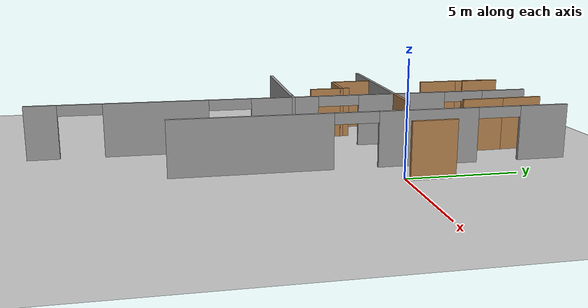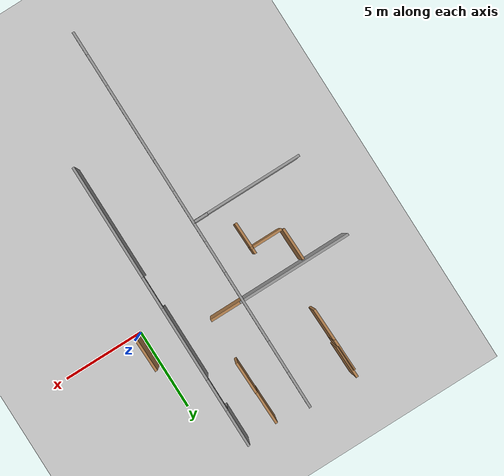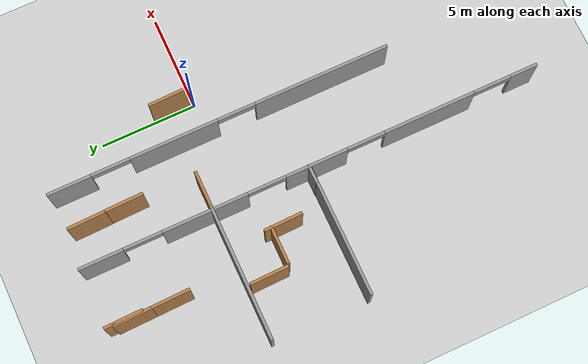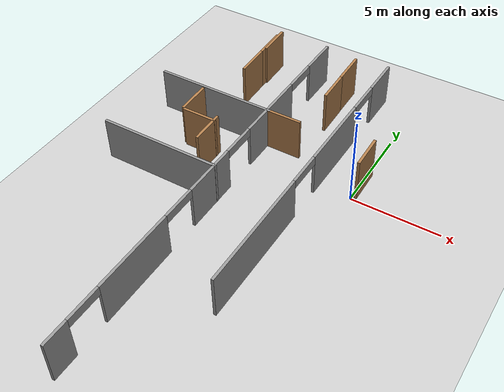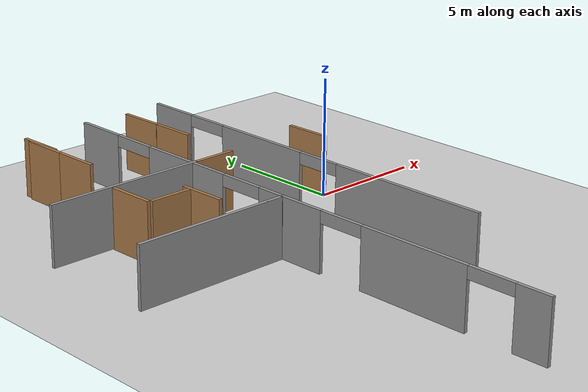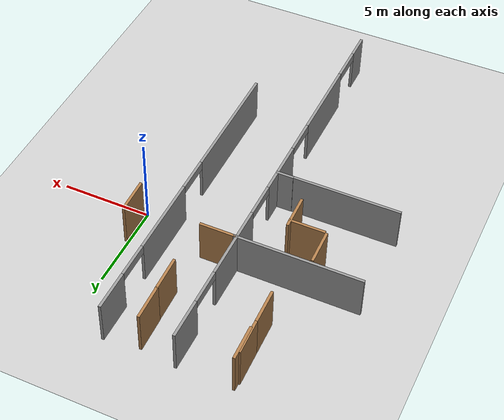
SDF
<sdf version="1.6">
 <world name="default">
  <model name="ground_plane">
   <static>1</static>
   <link name="link">
    <collision name="collision">
     <geometry><plane><normal>0 0 1</normal><size>100 100</size></plane></geometry>
     <surface><friction><ode><mu>100</mu><mu2>50</mu2></ode></friction></surface>
    </collision>
    <visual name="visual">
     <cast_shadows>0</cast_shadows>
     <geometry><plane><normal>0 0 1</normal><size>100 100</size></plane></geometry>
     <material>
      <script><uri>file://media/materials/scripts/gazebo.material</uri><name>Gazebo/Grey</name></script>
     </material>
    </visual>
   </link>
  </model>
  <model name="rbcp_final4">
   <link name="Wall_50">
    <pose>-10.8073 -0.125 2.5 0 0 -1.5708</pose>
    <visual name="Wall_50_Visual_0">
     <pose>-10.9762 0 1.25 0 -0 0</pose>
     <geometry><box><size>2.29763 0.15 2.5</size></box></geometry>
     <material>
      <script><uri>file://media/materials/scripts/gazebo.material</uri><name>Gazebo/Grey</name></script>
      <ambient>1 1 1 1</ambient>
      <diffuse>0.7 0.7 0.7 1</diffuse>
      <specular>0.01 0.01 0.01 1</specular>
      <emissive>0 0 0 1</emissive>
     </material>
    </visual>
    <visual name="Wall_50_Visual_1">
     <pose>-5.61109 0 1.25 0 -0 0</pose>
     <geometry><box><size>4.43257 0.15 2.5</size></box></geometry>
     <material>
      <script><uri>file://media/materials/scripts/gazebo.material</uri><name>Gazebo/Grey</name></script>
      <ambient>1 1 1 1</ambient>
      <diffuse>0.7 0.7 0.7 1</diffuse>
      <specular>0.01 0.01 0.01 1</specular>
      <emissive>0 0 0 1</emissive>
     </material>
    </visual>
    <visual name="Wall_50_Visual_2">
     <pose>0.229304 0 1.25 0 -0 0</pose>
     <geometry><box><size>3.24822 0.15 2.5</size></box></geometry>
     <material>
      <script><uri>file://media/materials/scripts/gazebo.material</uri><name>Gazebo/Grey</name></script>
      <ambient>1 1 1 1</ambient>
      <diffuse>0.7 0.7 0.7 1</diffuse>
      <specular>0.01 0.01 0.01 1</specular>
      <emissive>0 0 0 1</emissive>
     </material>
    </visual>
    <visual name="Wall_50_Visual_4">
     <pose>11.3986 0 1.25 0 -0 0</pose>
     <geometry><box><size>1.45284 0.15 2.5</size></box></geometry>
     <material>
      <script><uri>file://media/materials/scripts/gazebo.material</uri><name>Gazebo/Grey</name></script>
      <ambient>1 1 1 1</ambient>
      <diffuse>0.7 0.7 0.7 1</diffuse>
      <specular>0.01 0.01 0.01 1</specular>
      <emissive>0 0 0 1</emissive>
     </material>
    </visual>
    <visual name="Wall_50_Visual_3">
     <pose>6.26279 0 1.25 0 -0 0</pose>
     <geometry><box><size>4.81874 0.15 2.5</size></box></geometry>
     <material>
      <script><uri>file://media/materials/scripts/gazebo.material</uri><name>Gazebo/Grey</name></script>
      <ambient>1 1 1 1</ambient>
      <diffuse>0.7 0.7 0.7 1</diffuse>
      <specular>0.01 0.01 0.01 1</specular>
      <emissive>0 0 0 1</emissive>
     </material>
    </visual>
    <visual name="Wall_50_Visual_5">
     <pose>-8.82737 0 2.25 0 -0 0</pose>
     <geometry><box><size>2 0.15 0.5</size></box></geometry>
     <material>
      <script><uri>file://media/materials/scripts/gazebo.material</uri><name>Gazebo/Grey</name></script>
      <ambient>1 1 1 1</ambient>
      <diffuse>0.7 0.7 0.7 1</diffuse>
      <specular>0.01 0.01 0.01 1</specular>
      <emissive>0 0 0 1</emissive>
     </material>
    </visual>
    <visual name="Wall_50_Visual_6">
     <pose>-2.39481 0 2.25 0 -0 0</pose>
     <geometry><box><size>2 0.15 0.5</size></box></geometry>
     <material>
      <script><uri>file://media/materials/scripts/gazebo.material</uri><name>Gazebo/Grey</name></script>
      <ambient>1 1 1 1</ambient>
      <diffuse>0.7 0.7 0.7 1</diffuse>
      <specular>0.01 0.01 0.01 1</specular>
      <emissive>0 0 0 1</emissive>
     </material>
    </visual>
    <visual name="Wall_50_Visual_7">
     <pose>2.85341 0 2.25 0 -0 0</pose>
     <geometry><box><size>2 0.15 0.5</size></box></geometry>
     <material>
      <script><uri>file://media/materials/scripts/gazebo.material</uri><name>Gazebo/Grey</name></script>
      <ambient>1 1 1 1</ambient>
      <diffuse>0.7 0.7 0.7 1</diffuse>
      <specular>0.01 0.01 0.01 1</specular>
      <emissive>0 0 0 1</emissive>
     </material>
    </visual>
    <visual name="Wall_50_Visual_8">
     <pose>9.67216 0 2.25 0 -0 0</pose>
     <geometry><box><size>2 0.15 0.5</size></box></geometry>
     <material>
      <script><uri>file://media/materials/scripts/gazebo.material</uri><name>Gazebo/Grey</name></script>
      <ambient>1 1 1 1</ambient>
      <diffuse>0.7 0.7 0.7 1</diffuse>
      <specular>0.01 0.01 0.01 1</specular>
      <emissive>0 0 0 1</emissive>
     </material>
    </visual>
    <collision name="Wall_50_Collision_0">
     <pose>-10.9762 0 1.25 0 -0 0</pose>
     <geometry><box><size>2.29763 0.15 2.5</size></box></geometry>
     <surface>
      <friction>
       <ode><mu>1</mu><mu2>1</mu2><fdir1>0 0 0</fdir1><slip1>0</slip1><slip2>0</slip2></ode>
       <torsional>
        <coefficient>1</coefficient>
        <patch_radius>0</patch_radius>
        <surface_radius>0</surface_radius>
        <use_patch_radius>1</use_patch_radius>
        <ode><slip>0</slip></ode>
       </torsional>
      </friction>
      <bounce><restitution_coefficient>0</restitution_coefficient><threshold>1e+06</threshold></bounce>
      <contact>
       <collide_without_contact>0</collide_without_contact>
       <collide_without_contact_bitmask>1</collide_without_contact_bitmask>
       <collide_bitmask>1</collide_bitmask>
       <ode>
        <soft_cfm>0</soft_cfm>
        <soft_erp>0.2</soft_erp>
        <kp>1e+13</kp>
        <kd>1</kd>
        <max_vel>0.01</max_vel>
        <min_depth>0</min_depth>
       </ode>
       <bullet>
        <split_impulse>1</split_impulse>
        <split_impulse_penetration_threshold>-0.01</split_impulse_penetration_threshold>
        <soft_cfm>0</soft_cfm>
        <soft_erp>0.2</soft_erp>
        <kp>1e+13</kp>
        <kd>1</kd>
       </bullet>
      </contact>
     </surface>
    </collision>
    <collision name="Wall_50_Collision_1">
     <pose>-5.61109 0 1.25 0 -0 0</pose>
     <geometry><box><size>4.43257 0.15 2.5</size></box></geometry>
     <surface>
      <friction>
       <ode><mu>1</mu><mu2>1</mu2><fdir1>0 0 0</fdir1><slip1>0</slip1><slip2>0</slip2></ode>
       <torsional>
        <coefficient>1</coefficient>
        <patch_radius>0</patch_radius>
        <surface_radius>0</surface_radius>
        <use_patch_radius>1</use_patch_radius>
        <ode><slip>0</slip></ode>
       </torsional>
      </friction>
      <bounce><restitution_coefficient>0</restitution_coefficient><threshold>1e+06</threshold></bounce>
      <contact>
       <collide_without_contact>0</collide_without_contact>
       <collide_without_contact_bitmask>1</collide_without_contact_bitmask>
       <collide_bitmask>1</collide_bitmask>
       <ode>
        <soft_cfm>0</soft_cfm>
        <soft_erp>0.2</soft_erp>
        <kp>1e+13</kp>
        <kd>1</kd>
        <max_vel>0.01</max_vel>
        <min_depth>0</min_depth>
       </ode>
       <bullet>
        <split_impulse>1</split_impulse>
        <split_impulse_penetration_threshold>-0.01</split_impulse_penetration_threshold>
        <soft_cfm>0</soft_cfm>
        <soft_erp>0.2</soft_erp>
        <kp>1e+13</kp>
        <kd>1</kd>
       </bullet>
      </contact>
     </surface>
    </collision>
    <collision name="Wall_50_Collision_2">
     <pose>0.229304 0 1.25 0 -0 0</pose>
     <geometry><box><size>3.24822 0.15 2.5</size></box></geometry>
     <surface>
      <friction>
       <ode><mu>1</mu><mu2>1</mu2><fdir1>0 0 0</fdir1><slip1>0</slip1><slip2>0</slip2></ode>
       <torsional>
        <coefficient>1</coefficient>
        <patch_radius>0</patch_radius>
        <surface_radius>0</surface_radius>
        <use_patch_radius>1</use_patch_radius>
        <ode><slip>0</slip></ode>
       </torsional>
      </friction>
      <bounce><restitution_coefficient>0</restitution_coefficient><threshold>1e+06</threshold></bounce>
      <contact>
       <collide_without_contact>0</collide_without_contact>
       <collide_without_contact_bitmask>1</collide_without_contact_bitmask>
       <collide_bitmask>1</collide_bitmask>
       <ode>
        <soft_cfm>0</soft_cfm>
        <soft_erp>0.2</soft_erp>
        <kp>1e+13</kp>
        <kd>1</kd>
        <max_vel>0.01</max_vel>
        <min_depth>0</min_depth>
       </ode>
       <bullet>
        <split_impulse>1</split_impulse>
        <split_impulse_penetration_threshold>-0.01</split_impulse_penetration_threshold>
        <soft_cfm>0</soft_cfm>
        <soft_erp>0.2</soft_erp>
        <kp>1e+13</kp>
        <kd>1</kd>
       </bullet>
      </contact>
     </surface>
    </collision>
    <collision name="Wall_50_Collision_3">
     <pose>6.26279 0 1.25 0 -0 0</pose>
     <geometry><box><size>4.81874 0.15 2.5</size></box></geometry>
     <surface>
      <friction>
       <ode><mu>1</mu><mu2>1</mu2><fdir1>0 0 0</fdir1><slip1>0</slip1><slip2>0</slip2></ode>
       <torsional>
        <coefficient>1</coefficient>
        <patch_radius>0</patch_radius>
        <surface_radius>0</surface_radius>
        <use_patch_radius>1</use_patch_radius>
        <ode><slip>0</slip></ode>
       </torsional>
      </friction>
      <bounce><restitution_coefficient>0</restitution_coefficient><threshold>1e+06</threshold></bounce>
      <contact>
       <collide_without_contact>0</collide_without_contact>
       <collide_without_contact_bitmask>1</collide_without_contact_bitmask>
       <collide_bitmask>1</collide_bitmask>
       <ode>
        <soft_cfm>0</soft_cfm>
        <soft_erp>0.2</soft_erp>
        <kp>1e+13</kp>
        <kd>1</kd>
        <max_vel>0.01</max_vel>
        <min_depth>0</min_depth>
       </ode>
       <bullet>
        <split_impulse>1</split_impulse>
        <split_impulse_penetration_threshold>-0.01</split_impulse_penetration_threshold>
        <soft_cfm>0</soft_cfm>
        <soft_erp>0.2</soft_erp>
        <kp>1e+13</kp>
        <kd>1</kd>
       </bullet>
      </contact>
     </surface>
    </collision>
    <collision name="Wall_50_Collision_4">
     <pose>11.3986 0 1.25 0 -0 0</pose>
     <geometry><box><size>1.45284 0.15 2.5</size></box></geometry>
     <surface>
      <friction>
       <ode><mu>1</mu><mu2>1</mu2><fdir1>0 0 0</fdir1><slip1>0</slip1><slip2>0</slip2></ode>
       <torsional>
        <coefficient>1</coefficient>
        <patch_radius>0</patch_radius>
        <surface_radius>0</surface_radius>
        <use_patch_radius>1</use_patch_radius>
        <ode><slip>0</slip></ode>
       </torsional>
      </friction>
      <bounce><restitution_coefficient>0</restitution_coefficient><threshold>1e+06</threshold></bounce>
      <contact>
       <collide_without_contact>0</collide_without_contact>
       <collide_without_contact_bitmask>1</collide_without_contact_bitmask>
       <collide_bitmask>1</collide_bitmask>
       <ode>
        <soft_cfm>0</soft_cfm>
        <soft_erp>0.2</soft_erp>
        <kp>1e+13</kp>
        <kd>1</kd>
        <max_vel>0.01</max_vel>
        <min_depth>0</min_depth>
       </ode>
       <bullet>
        <split_impulse>1</split_impulse>
        <split_impulse_penetration_threshold>-0.01</split_impulse_penetration_threshold>
        <soft_cfm>0</soft_cfm>
        <soft_erp>0.2</soft_erp>
        <kp>1e+13</kp>
        <kd>1</kd>
       </bullet>
      </contact>
     </surface>
    </collision>
    <collision name="Wall_50_Collision_5">
     <pose>-8.82737 0 2.25 0 -0 0</pose>
     <geometry><box><size>2 0.15 0.5</size></box></geometry>
     <surface>
      <friction>
       <ode><mu>1</mu><mu2>1</mu2><fdir1>0 0 0</fdir1><slip1>0</slip1><slip2>0</slip2></ode>
       <torsional>
        <coefficient>1</coefficient>
        <patch_radius>0</patch_radius>
        <surface_radius>0</surface_radius>
        <use_patch_radius>1</use_patch_radius>
        <ode><slip>0</slip></ode>
       </torsional>
      </friction>
      <bounce><restitution_coefficient>0</restitution_coefficient><threshold>1e+06</threshold></bounce>
      <contact>
       <collide_without_contact>0</collide_without_contact>
       <collide_without_contact_bitmask>1</collide_without_contact_bitmask>
       <collide_bitmask>1</collide_bitmask>
       <ode>
        <soft_cfm>0</soft_cfm>
        <soft_erp>0.2</soft_erp>
        <kp>1e+13</kp>
        <kd>1</kd>
        <max_vel>0.01</max_vel>
        <min_depth>0</min_depth>
       </ode>
       <bullet>
        <split_impulse>1</split_impulse>
        <split_impulse_penetration_threshold>-0.01</split_impulse_penetration_threshold>
        <soft_cfm>0</soft_cfm>
        <soft_erp>0.2</soft_erp>
        <kp>1e+13</kp>
        <kd>1</kd>
       </bullet>
      </contact>
     </surface>
    </collision>
    <collision name="Wall_50_Collision_6">
     <pose>-2.39481 0 2.25 0 -0 0</pose>
     <geometry><box><size>2 0.15 0.5</size></box></geometry>
     <surface>
      <friction>
       <ode><mu>1</mu><mu2>1</mu2><fdir1>0 0 0</fdir1><slip1>0</slip1><slip2>0</slip2></ode>
       <torsional>
        <coefficient>1</coefficient>
        <patch_radius>0</patch_radius>
        <surface_radius>0</surface_radius>
        <use_patch_radius>1</use_patch_radius>
        <ode><slip>0</slip></ode>
       </torsional>
      </friction>
      <bounce><restitution_coefficient>0</restitution_coefficient><threshold>1e+06</threshold></bounce>
      <contact>
       <collide_without_contact>0</collide_without_contact>
       <collide_without_contact_bitmask>1</collide_without_contact_bitmask>
       <collide_bitmask>1</collide_bitmask>
       <ode>
        <soft_cfm>0</soft_cfm>
        <soft_erp>0.2</soft_erp>
        <kp>1e+13</kp>
        <kd>1</kd>
        <max_vel>0.01</max_vel>
        <min_depth>0</min_depth>
       </ode>
       <bullet>
        <split_impulse>1</split_impulse>
        <split_impulse_penetration_threshold>-0.01</split_impulse_penetration_threshold>
        <soft_cfm>0</soft_cfm>
        <soft_erp>0.2</soft_erp>
        <kp>1e+13</kp>
        <kd>1</kd>
       </bullet>
      </contact>
     </surface>
    </collision>
    <collision name="Wall_50_Collision_7">
     <pose>2.85341 0 2.25 0 -0 0</pose>
     <geometry><box><size>2 0.15 0.5</size></box></geometry>
     <surface>
      <friction>
       <ode><mu>1</mu><mu2>1</mu2><fdir1>0 0 0</fdir1><slip1>0</slip1><slip2>0</slip2></ode>
       <torsional>
        <coefficient>1</coefficient>
        <patch_radius>0</patch_radius>
        <surface_radius>0</surface_radius>
        <use_patch_radius>1</use_patch_radius>
        <ode><slip>0</slip></ode>
       </torsional>
      </friction>
      <bounce><restitution_coefficient>0</restitution_coefficient><threshold>1e+06</threshold></bounce>
      <contact>
       <collide_without_contact>0</collide_without_contact>
       <collide_without_contact_bitmask>1</collide_without_contact_bitmask>
       <collide_bitmask>1</collide_bitmask>
       <ode>
        <soft_cfm>0</soft_cfm>
        <soft_erp>0.2</soft_erp>
        <kp>1e+13</kp>
        <kd>1</kd>
        <max_vel>0.01</max_vel>
        <min_depth>0</min_depth>
       </ode>
       <bullet>
        <split_impulse>1</split_impulse>
        <split_impulse_penetration_threshold>-0.01</split_impulse_penetration_threshold>
        <soft_cfm>0</soft_cfm>
        <soft_erp>0.2</soft_erp>
        <kp>1e+13</kp>
        <kd>1</kd>
       </bullet>
      </contact>
     </surface>
    </collision>
    <collision name="Wall_50_Collision_8">
     <pose>9.67216 0 2.25 0 -0 0</pose>
     <geometry><box><size>2 0.15 0.5</size></box></geometry>
     <surface>
      <friction>
       <ode><mu>1</mu><mu2>1</mu2><fdir1>0 0 0</fdir1><slip1>0</slip1><slip2>0</slip2></ode>
       <torsional>
        <coefficient>1</coefficient>
        <patch_radius>0</patch_radius>
        <surface_radius>0</surface_radius>
        <use_patch_radius>1</use_patch_radius>
        <ode><slip>0</slip></ode>
       </torsional>
      </friction>
      <bounce><restitution_coefficient>0</restitution_coefficient><threshold>1e+06</threshold></bounce>
      <contact>
       <collide_without_contact>0</collide_without_contact>
       <collide_without_contact_bitmask>1</collide_without_contact_bitmask>
       <collide_bitmask>1</collide_bitmask>
       <ode>
        <soft_cfm>0</soft_cfm>
        <soft_erp>0.2</soft_erp>
        <kp>1e+13</kp>
        <kd>1</kd>
        <max_vel>0.01</max_vel>
        <min_depth>0</min_depth>
       </ode>
       <bullet>
        <split_impulse>1</split_impulse>
        <split_impulse_penetration_threshold>-0.01</split_impulse_penetration_threshold>
        <soft_cfm>0</soft_cfm>
        <soft_erp>0.2</soft_erp>
        <kp>1e+13</kp>
        <kd>1</kd>
       </bullet>
      </contact>
     </surface>
    </collision>
   </link>
   <link name="Wall_54">
    <pose>-14.284 0.027922 2.5 0 -0 0</pose>
    <visual name="Wall_54_Visual">
     <pose>0 0 1.25 0 -0 0</pose>
     <geometry><box><size>6.75 0.15 2.5</size></box></geometry>
     <material>
      <script><uri>file://media/materials/scripts/gazebo.material</uri><name>Gazebo/Grey</name></script>
      <ambient>1 1 1 1</ambient>
      <diffuse>0.7 0.7 0.7 1</diffuse>
      <specular>0.01 0.01 0.01 1</specular>
      <emissive>0 0 0 1</emissive>
     </material>
    </visual>
    <collision name="Wall_54_Collision">
     <pose>0 0 1.25 0 -0 0</pose>
     <geometry><box><size>6.75 0.15 2.5</size></box></geometry>
     <surface>
      <friction>
       <ode><mu>1</mu><mu2>1</mu2><fdir1>0 0 0</fdir1><slip1>0</slip1><slip2>0</slip2></ode>
       <torsional>
        <coefficient>1</coefficient>
        <patch_radius>0</patch_radius>
        <surface_radius>0</surface_radius>
        <use_patch_radius>1</use_patch_radius>
        <ode><slip>0</slip></ode>
       </torsional>
      </friction>
      <bounce><restitution_coefficient>0</restitution_coefficient><threshold>1e+06</threshold></bounce>
      <contact>
       <collide_without_contact>0</collide_without_contact>
       <collide_without_contact_bitmask>1</collide_without_contact_bitmask>
       <collide_bitmask>1</collide_bitmask>
       <ode>
        <soft_cfm>0</soft_cfm>
        <soft_erp>0.2</soft_erp>
        <kp>1e+13</kp>
        <kd>1</kd>
        <max_vel>0.01</max_vel>
        <min_depth>0</min_depth>
       </ode>
       <bullet>
        <split_impulse>1</split_impulse>
        <split_impulse_penetration_threshold>-0.01</split_impulse_penetration_threshold>
        <soft_cfm>0</soft_cfm>
        <soft_erp>0.2</soft_erp>
        <kp>1e+13</kp>
        <kd>1</kd>
       </bullet>
      </contact>
     </surface>
    </collision>
   </link>
   <link name="Wall_55">
    <pose>-11.2256 0.046833 2.5 0 -0 0</pose>
    <visual name="Wall_55_Visual">
     <pose>0 0 1.25 0 -0 0</pose>
     <geometry><box><size>1 0.15 2.5</size></box></geometry>
     <material>
      <script><uri>file://media/materials/scripts/gazebo.material</uri><name>Gazebo/Grey</name></script>
      <ambient>1 1 1 1</ambient>
      <diffuse>0.7 0.7 0.7 1</diffuse>
      <specular>0.01 0.01 0.01 1</specular>
      <emissive>0 0 0 1</emissive>
     </material>
    </visual>
    <collision name="Wall_55_Collision">
     <pose>0 0 1.25 0 -0 0</pose>
     <geometry><box><size>1 0.15 2.5</size></box></geometry>
     <surface>
      <friction>
       <ode><mu>1</mu><mu2>1</mu2><fdir1>0 0 0</fdir1><slip1>0</slip1><slip2>0</slip2></ode>
       <torsional>
        <coefficient>1</coefficient>
        <patch_radius>0</patch_radius>
        <surface_radius>0</surface_radius>
        <use_patch_radius>1</use_patch_radius>
        <ode><slip>0</slip></ode>
       </torsional>
      </friction>
      <bounce><restitution_coefficient>0</restitution_coefficient><threshold>1e+06</threshold></bounce>
      <contact>
       <collide_without_contact>0</collide_without_contact>
       <collide_without_contact_bitmask>1</collide_without_contact_bitmask>
       <collide_bitmask>1</collide_bitmask>
       <ode>
        <soft_cfm>0</soft_cfm>
        <soft_erp>0.2</soft_erp>
        <kp>1e+13</kp>
        <kd>1</kd>
        <max_vel>0.01</max_vel>
        <min_depth>0</min_depth>
       </ode>
       <bullet>
        <split_impulse>1</split_impulse>
        <split_impulse_penetration_threshold>-0.01</split_impulse_penetration_threshold>
        <soft_cfm>0</soft_cfm>
        <soft_erp>0.2</soft_erp>
        <kp>1e+13</kp>
        <kd>1</kd>
       </bullet>
      </contact>
     </surface>
    </collision>
   </link>
   <link name="Wall_56">
    <pose>-6.85289 2.98782 2.5 0 -0 1.5708</pose>
    <visual name="Wall_56_Visual_0">
     <pose>-5.44366 0 1.25 0 -0 0</pose>
     <geometry><box><size>7.11269 0.15 2.5</size></box></geometry>
     <material>
      <script><uri>file://media/materials/scripts/gazebo.material</uri><name>Gazebo/Grey</name></script>
      <ambient>1 1 1 1</ambient>
      <diffuse>0.7 0.7 0.7 1</diffuse>
      <specular>0.01 0.01 0.01 1</specular>
      <emissive>0 0 0 1</emissive>
     </material>
    </visual>
    <visual name="Wall_56_Visual_1">
     <pose>2.41362 0 1.25 0 -0 0</pose>
     <geometry><box><size>4.60187 0.15 2.5</size></box></geometry>
     <material>
      <script><uri>file://media/materials/scripts/gazebo.material</uri><name>Gazebo/Grey</name></script>
      <ambient>1 1 1 1</ambient>
      <diffuse>0.7 0.7 0.7 1</diffuse>
      <specular>0.01 0.01 0.01 1</specular>
      <emissive>0 0 0 1</emissive>
     </material>
    </visual>
    <visual name="Wall_56_Visual_2">
     <pose>7.85727 0 1.25 0 -0 0</pose>
     <geometry><box><size>2.28545 0.15 2.5</size></box></geometry>
     <material>
      <script><uri>file://media/materials/scripts/gazebo.material</uri><name>Gazebo/Grey</name></script>
      <ambient>1 1 1 1</ambient>
      <diffuse>0.7 0.7 0.7 1</diffuse>
      <specular>0.01 0.01 0.01 1</specular>
      <emissive>0 0 0 1</emissive>
     </material>
    </visual>
    <visual name="Wall_56_Visual_3">
     <pose>-0.887314 0 2.25 0 -0 0</pose>
     <geometry><box><size>2 0.15 0.5</size></box></geometry>
     <material>
      <script><uri>file://media/materials/scripts/gazebo.material</uri><name>Gazebo/Grey</name></script>
      <ambient>1 1 1 1</ambient>
      <diffuse>0.7 0.7 0.7 1</diffuse>
      <specular>0.01 0.01 0.01 1</specular>
      <emissive>0 0 0 1</emissive>
     </material>
    </visual>
    <visual name="Wall_56_Visual_4">
     <pose>5.71455 0 2.25 0 -0 0</pose>
     <geometry><box><size>2 0.15 0.5</size></box></geometry>
     <material>
      <script><uri>file://media/materials/scripts/gazebo.material</uri><name>Gazebo/Grey</name></script>
      <ambient>1 1 1 1</ambient>
      <diffuse>0.7 0.7 0.7 1</diffuse>
      <specular>0.01 0.01 0.01 1</specular>
      <emissive>0 0 0 1</emissive>
     </material>
    </visual>
    <collision name="Wall_56_Collision_0">
     <pose>-5.44366 0 1.25 0 -0 0</pose>
     <geometry><box><size>7.11269 0.15 2.5</size></box></geometry>
     <surface>
      <friction>
       <ode><mu>1</mu><mu2>1</mu2><fdir1>0 0 0</fdir1><slip1>0</slip1><slip2>0</slip2></ode>
       <torsional>
        <coefficient>1</coefficient>
        <patch_radius>0</patch_radius>
        <surface_radius>0</surface_radius>
        <use_patch_radius>1</use_patch_radius>
        <ode><slip>0</slip></ode>
       </torsional>
      </friction>
      <bounce><restitution_coefficient>0</restitution_coefficient><threshold>1e+06</threshold></bounce>
      <contact>
       <collide_without_contact>0</collide_without_contact>
       <collide_without_contact_bitmask>1</collide_without_contact_bitmask>
       <collide_bitmask>1</collide_bitmask>
       <ode>
        <soft_cfm>0</soft_cfm>
        <soft_erp>0.2</soft_erp>
        <kp>1e+13</kp>
        <kd>1</kd>
        <max_vel>0.01</max_vel>
        <min_depth>0</min_depth>
       </ode>
       <bullet>
        <split_impulse>1</split_impulse>
        <split_impulse_penetration_threshold>-0.01</split_impulse_penetration_threshold>
        <soft_cfm>0</soft_cfm>
        <soft_erp>0.2</soft_erp>
        <kp>1e+13</kp>
        <kd>1</kd>
       </bullet>
      </contact>
     </surface>
    </collision>
    <collision name="Wall_56_Collision_1">
     <pose>2.41362 0 1.25 0 -0 0</pose>
     <geometry><box><size>4.60187 0.15 2.5</size></box></geometry>
     <surface>
      <friction>
       <ode><mu>1</mu><mu2>1</mu2><fdir1>0 0 0</fdir1><slip1>0</slip1><slip2>0</slip2></ode>
       <torsional>
        <coefficient>1</coefficient>
        <patch_radius>0</patch_radius>
        <surface_radius>0</surface_radius>
        <use_patch_radius>1</use_patch_radius>
        <ode><slip>0</slip></ode>
       </torsional>
      </friction>
      <bounce><restitution_coefficient>0</restitution_coefficient><threshold>1e+06</threshold></bounce>
      <contact>
       <collide_without_contact>0</collide_without_contact>
       <collide_without_contact_bitmask>1</collide_without_contact_bitmask>
       <collide_bitmask>1</collide_bitmask>
       <ode>
        <soft_cfm>0</soft_cfm>
        <soft_erp>0.2</soft_erp>
        <kp>1e+13</kp>
        <kd>1</kd>
        <max_vel>0.01</max_vel>
        <min_depth>0</min_depth>
       </ode>
       <bullet>
        <split_impulse>1</split_impulse>
        <split_impulse_penetration_threshold>-0.01</split_impulse_penetration_threshold>
        <soft_cfm>0</soft_cfm>
        <soft_erp>0.2</soft_erp>
        <kp>1e+13</kp>
        <kd>1</kd>
       </bullet>
      </contact>
     </surface>
    </collision>
    <collision name="Wall_56_Collision_2">
     <pose>7.85727 0 1.25 0 -0 0</pose>
     <geometry><box><size>2.28545 0.15 2.5</size></box></geometry>
     <surface>
      <friction>
       <ode><mu>1</mu><mu2>1</mu2><fdir1>0 0 0</fdir1><slip1>0</slip1><slip2>0</slip2></ode>
       <torsional>
        <coefficient>1</coefficient>
        <patch_radius>0</patch_radius>
        <surface_radius>0</surface_radius>
        <use_patch_radius>1</use_patch_radius>
        <ode><slip>0</slip></ode>
       </torsional>
      </friction>
      <bounce><restitution_coefficient>0</restitution_coefficient><threshold>1e+06</threshold></bounce>
      <contact>
       <collide_without_contact>0</collide_without_contact>
       <collide_without_contact_bitmask>1</collide_without_contact_bitmask>
       <collide_bitmask>1</collide_bitmask>
       <ode>
        <soft_cfm>0</soft_cfm>
        <soft_erp>0.2</soft_erp>
        <kp>1e+13</kp>
        <kd>1</kd>
        <max_vel>0.01</max_vel>
        <min_depth>0</min_depth>
       </ode>
       <bullet>
        <split_impulse>1</split_impulse>
        <split_impulse_penetration_threshold>-0.01</split_impulse_penetration_threshold>
        <soft_cfm>0</soft_cfm>
        <soft_erp>0.2</soft_erp>
        <kp>1e+13</kp>
        <kd>1</kd>
       </bullet>
      </contact>
     </surface>
    </collision>
    <collision name="Wall_56_Collision_3">
     <pose>-0.887314 0 2.25 0 -0 0</pose>
     <geometry><box><size>2 0.15 0.5</size></box></geometry>
     <surface>
      <friction>
       <ode><mu>1</mu><mu2>1</mu2><fdir1>0 0 0</fdir1><slip1>0</slip1><slip2>0</slip2></ode>
       <torsional>
        <coefficient>1</coefficient>
        <patch_radius>0</patch_radius>
        <surface_radius>0</surface_radius>
        <use_patch_radius>1</use_patch_radius>
        <ode><slip>0</slip></ode>
       </torsional>
      </friction>
      <bounce><restitution_coefficient>0</restitution_coefficient><threshold>1e+06</threshold></bounce>
      <contact>
       <collide_without_contact>0</collide_without_contact>
       <collide_without_contact_bitmask>1</collide_without_contact_bitmask>
       <collide_bitmask>1</collide_bitmask>
       <ode>
        <soft_cfm>0</soft_cfm>
        <soft_erp>0.2</soft_erp>
        <kp>1e+13</kp>
        <kd>1</kd>
        <max_vel>0.01</max_vel>
        <min_depth>0</min_depth>
       </ode>
       <bullet>
        <split_impulse>1</split_impulse>
        <split_impulse_penetration_threshold>-0.01</split_impulse_penetration_threshold>
        <soft_cfm>0</soft_cfm>
        <soft_erp>0.2</soft_erp>
        <kp>1e+13</kp>
        <kd>1</kd>
       </bullet>
      </contact>
     </surface>
    </collision>
    <collision name="Wall_56_Collision_4">
     <pose>5.71455 0 2.25 0 -0 0</pose>
     <geometry><box><size>2 0.15 0.5</size></box></geometry>
     <surface>
      <friction>
       <ode><mu>1</mu><mu2>1</mu2><fdir1>0 0 0</fdir1><slip1>0</slip1><slip2>0</slip2></ode>
       <torsional>
        <coefficient>1</coefficient>
        <patch_radius>0</patch_radius>
        <surface_radius>0</surface_radius>
        <use_patch_radius>1</use_patch_radius>
        <ode><slip>0</slip></ode>
       </torsional>
      </friction>
      <bounce><restitution_coefficient>0</restitution_coefficient><threshold>1e+06</threshold></bounce>
      <contact>
       <collide_without_contact>0</collide_without_contact>
       <collide_without_contact_bitmask>1</collide_without_contact_bitmask>
       <collide_bitmask>1</collide_bitmask>
       <ode>
        <soft_cfm>0</soft_cfm>
        <soft_erp>0.2</soft_erp>
        <kp>1e+13</kp>
        <kd>1</kd>
        <max_vel>0.01</max_vel>
        <min_depth>0</min_depth>
       </ode>
       <bullet>
        <split_impulse>1</split_impulse>
        <split_impulse_penetration_threshold>-0.01</split_impulse_penetration_threshold>
        <soft_cfm>0</soft_cfm>
        <soft_erp>0.2</soft_erp>
        <kp>1e+13</kp>
        <kd>1</kd>
       </bullet>
      </contact>
     </surface>
    </collision>
   </link>
   <link name="Wall_64">
    <pose>-14.1154 5.10907 2.5 0 -0 0</pose>
    <visual name="Wall_64_Visual">
     <pose>0 0 1.25 0 -0 0</pose>
     <geometry><box><size>7 0.15 2.5</size></box></geometry>
     <material>
      <script><uri>file://media/materials/scripts/gazebo.material</uri><name>Gazebo/Grey</name></script>
      <ambient>1 1 1 1</ambient>
      <diffuse>0.7 0.7 0.7 1</diffuse>
      <specular>0.01 0.01 0.01 1</specular>
      <emissive>0 0 0 1</emissive>
     </material>
    </visual>
    <collision name="Wall_64_Collision">
     <pose>0 0 1.25 0 -0 0</pose>
     <geometry><box><size>7 0.15 2.5</size></box></geometry>
     <surface>
      <friction>
       <ode><mu>1</mu><mu2>1</mu2><fdir1>0 0 0</fdir1><slip1>0</slip1><slip2>0</slip2></ode>
       <torsional>
        <coefficient>1</coefficient>
        <patch_radius>0</patch_radius>
        <surface_radius>0</surface_radius>
        <use_patch_radius>1</use_patch_radius>
        <ode><slip>0</slip></ode>
       </torsional>
      </friction>
      <bounce><restitution_coefficient>0</restitution_coefficient><threshold>1e+06</threshold></bounce>
      <contact>
       <collide_without_contact>0</collide_without_contact>
       <collide_without_contact_bitmask>1</collide_without_contact_bitmask>
       <collide_bitmask>1</collide_bitmask>
       <ode>
        <soft_cfm>0</soft_cfm>
        <soft_erp>0.2</soft_erp>
        <kp>1e+13</kp>
        <kd>1</kd>
        <max_vel>0.01</max_vel>
        <min_depth>0</min_depth>
       </ode>
       <bullet>
        <split_impulse>1</split_impulse>
        <split_impulse_penetration_threshold>-0.01</split_impulse_penetration_threshold>
        <soft_cfm>0</soft_cfm>
        <soft_erp>0.2</soft_erp>
        <kp>1e+13</kp>
        <kd>1</kd>
       </bullet>
      </contact>
     </surface>
    </collision>
   </link>
   <static>1</static>
   <pose>4.93057 -3.68418 -2.5 0 -0 0</pose>
  </model>
  <model name="tr_maze_lay_1_clone_9_clone_18">
   <pose>0.179992 1.14292 0 0 0 -1.549</pose>
   <link name="Wall_21">
    <collision name="Wall_21_Collision">
     <geometry><box><size>2 0.15 2.5</size></box></geometry>
     <pose>0 0 1.25 0 -0 0</pose>
    </collision>
    <visual name="Wall_21_Visual">
     <pose>0 0 1.25 0 -0 0</pose>
     <geometry><box><size>2 0.15 2.5</size></box></geometry>
     <material>
      <script><uri>file://media/materials/scripts/gazebo.material</uri><name>Gazebo/Wood</name></script>
      <ambient>1 1 1 1</ambient>
     </material>
    </visual>
    <pose>0 0 0 0 -0 3.14159</pose>
   </link>
   <static>1</static>
  </model>
  <model name="tr_maze_lay_1_clone_9_clone_20">
   <pose>-9.86463 0.284339 0 0 0 -1.549</pose>
   <link name="Wall_21">
    <collision name="Wall_21_Collision">
     <geometry><box><size>2 0.15 2.5</size></box></geometry>
     <pose>0 0 1.25 0 -0 0</pose>
    </collision>
    <visual name="Wall_21_Visual">
     <pose>0 0 1.25 0 -0 0</pose>
     <geometry><box><size>2 0.15 2.5</size></box></geometry>
     <material>
      <script><uri>file://media/materials/scripts/gazebo.material</uri><name>Gazebo/Wood</name></script>
      <ambient>1 1 1 1</ambient>
     </material>
    </visual>
    <pose>0 0 0 0 -0 3.14159</pose>
   </link>
   <static>1</static>
  </model>
  <model name="tr_maze_lay_1_clone_9_clone_21">
   <pose>-3.84181 7.04999 0 0 0 -1.549</pose>
   <link name="Wall_21">
    <collision name="Wall_21_Collision">
     <geometry><box><size>2 0.15 2.5</size></box></geometry>
     <pose>0 0 1.25 0 -0 0</pose>
    </collision>
    <visual name="Wall_21_Visual">
     <pose>0 0 1.25 0 -0 0</pose>
     <geometry><box><size>2 0.15 2.5</size></box></geometry>
     <material>
      <script><uri>file://media/materials/scripts/gazebo.material</uri><name>Gazebo/Wood</name></script>
      <ambient>1 1 1 1</ambient>
     </material>
    </visual>
    <pose>0 0 0 0 -0 3.14159</pose>
   </link>
   <static>1</static>
  </model>
  <model name="tr_maze_lay_1_clone_9_clone_22">
   <pose>-3.78901 5.10406 0 0 0 -1.549</pose>
   <link name="Wall_21">
    <collision name="Wall_21_Collision">
     <geometry><box><size>2 0.15 2.5</size></box></geometry>
     <pose>0 0 1.25 0 -0 0</pose>
    </collision>
    <visual name="Wall_21_Visual">
     <pose>0 0 1.25 0 -0 0</pose>
     <geometry><box><size>2 0.15 2.5</size></box></geometry>
     <material>
      <script><uri>file://media/materials/scripts/gazebo.material</uri><name>Gazebo/Wood</name></script>
      <ambient>1 1 1 1</ambient>
     </material>
    </visual>
    <pose>0 0 0 0 -0 3.14159</pose>
   </link>
   <static>1</static>
  </model>
  <model name="tr_maze_lay_1_clone_5_clone_2">
   <pose>-7.82755 -1.37518 0 0 0 -1.549</pose>
   <link name="Wall_21">
    <collision name="Wall_21_Collision">
     <geometry><box><size>2 0.15 2.5</size></box></geometry>
     <pose>0 0 1.25 0 -0 0</pose>
    </collision>
    <visual name="Wall_21_Visual">
     <pose>0 0 1.25 0 -0 0</pose>
     <geometry><box><size>2 0.15 2.5</size></box></geometry>
     <material>
      <script><uri>file://media/materials/scripts/gazebo.material</uri><name>Gazebo/Wood</name></script>
      <ambient>1 1 1 1</ambient>
     </material>
    </visual>
    <pose>0 0 0 0 -0 3.14159</pose>
   </link>
   <static>1</static>
  </model>
  <model name="tr_maze_lay_1_clone_5_clone_3">
   <pose>-8.94083 4.9104 0 0 0 -1.549</pose>
   <link name="Wall_21">
    <collision name="Wall_21_Collision">
     <geometry><box><size>2 0.15 2.5</size></box></geometry>
     <pose>0 0 1.25 0 -0 0</pose>
    </collision>
    <visual name="Wall_21_Visual">
     <pose>0 0 1.25 0 -0 0</pose>
     <geometry><box><size>2 0.15 2.5</size></box></geometry>
     <material>
      <script><uri>file://media/materials/scripts/gazebo.material</uri><name>Gazebo/Wood</name></script>
      <ambient>1 1 1 1</ambient>
     </material>
    </visual>
    <pose>0 0 0 0 -0 3.14159</pose>
   </link>
   <static>1</static>
  </model>
  <model name="tr_maze_lay_1_clone_5_clone_4">
   <pose>-8.98364 6.86786 0 0 0 -1.549</pose>
   <link name="Wall_21">
    <collision name="Wall_21_Collision">
     <geometry><box><size>2 0.15 2.5</size></box></geometry>
     <pose>0 0 1.25 0 -0 0</pose>
    </collision>
    <visual name="Wall_21_Visual">
     <pose>0 0 1.25 0 -0 0</pose>
     <geometry><box><size>2 0.15 2.5</size></box></geometry>
     <material>
      <script><uri>file://media/materials/scripts/gazebo.material</uri><name>Gazebo/Wood</name></script>
      <ambient>1 1 1 1</ambient>
     </material>
    </visual>
    <pose>0 0 0 0 -0 3.14159</pose>
   </link>
   <static>1</static>
  </model>
  <model name="tr_maze_lay_1_clone_5_clone_5">
   <pose>-8.90896 7.28193 0 0 0 -1.549</pose>
   <link name="Wall_21">
    <collision name="Wall_21_Collision">
     <geometry><box><size>2 0.15 2.5</size></box></geometry>
     <pose>0 0 1.25 0 -0 0</pose>
    </collision>
    <visual name="Wall_21_Visual">
     <pose>0 0 1.25 0 -0 0</pose>
     <geometry><box><size>2 0.15 2.5</size></box></geometry>
     <material>
      <script><uri>file://media/materials/scripts/gazebo.material</uri><name>Gazebo/Wood</name></script>
      <ambient>1 1 1 1</ambient>
     </material>
    </visual>
    <pose>0 0 0 0 -0 3.14159</pose>
   </link>
   <static>1</static>
  </model>
  <model name="tr_maze_lay_1_clone_15_clone_3">
   <pose>-4.82444 1.41703 0 0 -0 0</pose>
   <link name="Wall_21">
    <collision name="Wall_21_Collision">
     <geometry><box><size>2 0.15 2.5</size></box></geometry>
     <pose>0 0 1.25 0 -0 0</pose>
    </collision>
    <visual name="Wall_21_Visual">
     <pose>0 0 1.25 0 -0 0</pose>
     <geometry><box><size>2 0.15 2.5</size></box></geometry>
     <material>
      <script><uri>file://media/materials/scripts/gazebo.material</uri><name>Gazebo/Wood</name></script>
      <ambient>1 1 1 1</ambient>
     </material>
    </visual>
    <pose>0 0 0 0 -0 3.14159</pose>
   </link>
   <static>1</static>
  </model>
  <model name="tr_maze_lay_1_clone_15_clone_4">
   <pose>-8.75866 -0.754697 0 0 -0 0</pose>
   <link name="Wall_21">
    <collision name="Wall_21_Collision">
     <geometry><box><size>2 0.15 2.5</size></box></geometry>
     <pose>0 0 1.25 0 -0 0</pose>
    </collision>
    <visual name="Wall_21_Visual">
     <pose>0 0 1.25 0 -0 0</pose>
     <geometry><box><size>2 0.15 2.5</size></box></geometry>
     <material>
      <script><uri>file://media/materials/scripts/gazebo.material</uri><name>Gazebo/Wood</name></script>
      <ambient>1 1 1 1</ambient>
     </material>
    </visual>
    <pose>0 0 0 0 -0 3.14159</pose>
   </link>
   <static>1</static>
  </model>
 </world>
</sdf>
